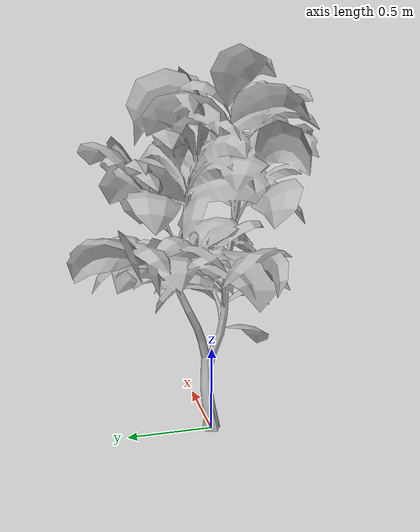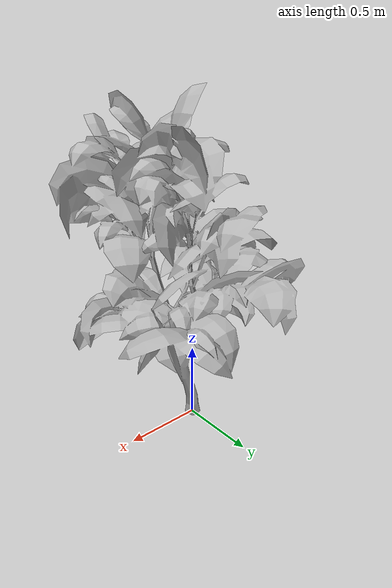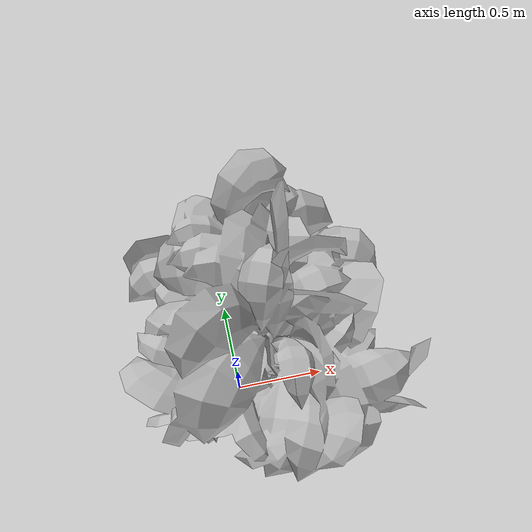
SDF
<?xml version="1.0" ?>
<sdf version='1.5'>
  <model name='birch_tree'>
    <static>true</static>
      <link name='birch_tree'>
        <pose frame=''>0 0 0 0 0 0</pose>
         <collision name='birch_tree'>
          <geometry>
            <mesh>
              <uri>model://birch_tree/birch_tree.dae</uri>
            </mesh>
          </geometry>
        </collision>
        <visual name='birch_tree'>
        <cast_shadows>false</cast_shadows>
          <geometry>
            <mesh>
              <scale>0.4 0.4 0.4</scale>
              <uri>model://birch_tree/birch_tree.dae</uri>
            </mesh>
          </geometry>
          <material>
            <script>
              <name>birch_tree</name>
              <uri>model://birch_tree/birch_tree.dae</uri>
            </script>
          </material>
        </visual>
      </link>
  </model>
</sdf>
